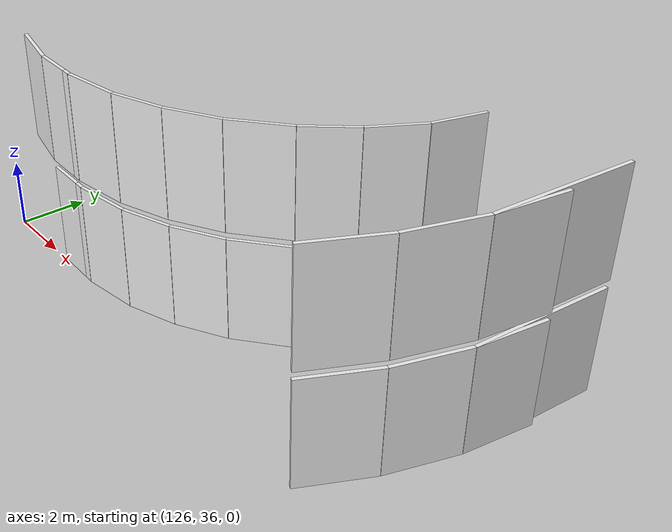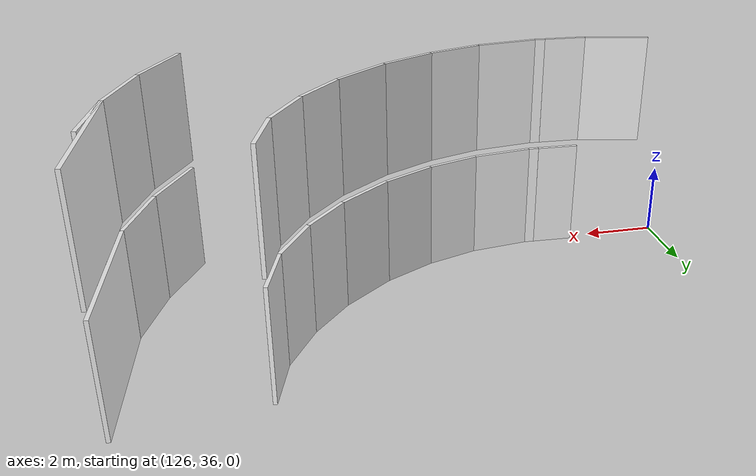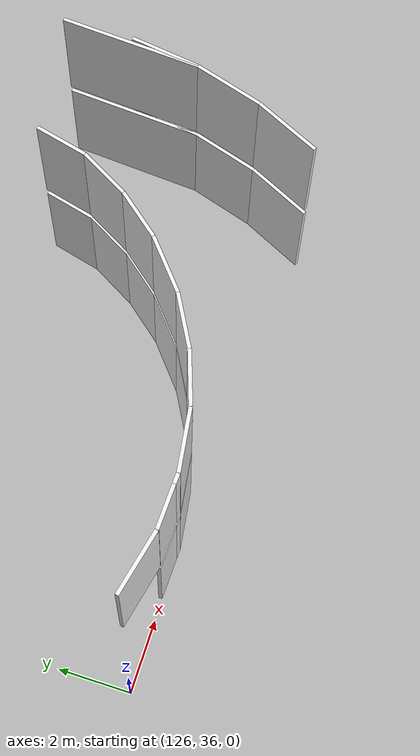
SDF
<sdf version="1.6">
 <world name="default">
  <model name="wall_129.2_36.1_0.0">
   <static>true</static>
   <pose>129.20000000001164 36.05499999993481 1.5 0 0 -0.025856305182021404</pose>
   <link name="link">
    <visual name="visual">
     <geometry><box><size>1.1603878662168654 0.1 3</size></box></geometry>
     <material>
      <script><uri>file://media/materials/scripts/gazebo.material</uri><name>Gazebo/White</name></script>
     </material>
    </visual>
   </link>
  </model>
  <model name="wall_129.9_36.0_0.0">
   <static>true</static>
   <pose>129.9200000000128 36.03499999991618 1.5 0 0 -0.035699113546877645</pose>
   <link name="link">
    <visual name="visual">
     <geometry><box><size>0.2801785145008318 0.1 3</size></box></geometry>
     <material>
      <script><uri>file://media/materials/scripts/gazebo.material</uri><name>Gazebo/White</name></script>
     </material>
    </visual>
   </link>
  </model>
  <model name="wall_130.9_36.1_0.0">
   <static>true</static>
   <pose>130.88999999998487 36.14999999990687 1.5 0 0 0.14358339378054572</pose>
   <link name="link">
    <visual name="visual">
     <geometry><box><size>1.6772596698252356 0.1 3</size></box></geometry>
     <material>
      <script><uri>file://media/materials/scripts/gazebo.material</uri><name>Gazebo/White</name></script>
     </material>
    </visual>
   </link>
  </model>
  <model name="wall_132.4_36.5_0.0">
   <static>true</static>
   <pose>132.42999999999302 36.514999999897555 1.5 0 0 0.33227648126688747</pose>
   <link name="link">
    <visual name="visual">
     <geometry><box><size>1.5021651040686979 0.1 3</size></box></geometry>
     <material>
      <script><uri>file://media/materials/scripts/gazebo.material</uri><name>Gazebo/White</name></script>
     </material>
    </visual>
   </link>
  </model>
  <model name="wall_133.8_37.1_0.0">
   <static>true</static>
   <pose>133.82000000000698 37.12999999988824 1.5 0 0 0.4983157943414261</pose>
   <link name="link">
    <visual name="visual">
     <geometry><box><size>1.5482893787315108 0.1 3</size></box></geometry>
     <material>
      <script><uri>file://media/materials/scripts/gazebo.material</uri><name>Gazebo/White</name></script>
     </material>
    </visual>
   </link>
  </model>
  <model name="wall_135.2_38.0_0.0">
   <static>true</static>
   <pose>135.15499999999884 38.03499999991618 1.5 0 0 0.6848975642669308</pose>
   <link name="link">
    <visual name="visual">
     <geometry><box><size>1.6914490827793647 0.1 3</size></box></geometry>
     <material>
      <script><uri>file://media/materials/scripts/gazebo.material</uri><name>Gazebo/White</name></script>
     </material>
    </visual>
   </link>
  </model>
  <model name="wall_136.3_39.1_0.0">
   <static>true</static>
   <pose>136.2950000000128 39.13500000000931 1.5 0 0 0.8614417228159299</pose>
   <link name="link">
    <visual name="visual">
     <geometry><box><size>1.4892279882068225 0.1 3</size></box></geometry>
     <material>
      <script><uri>file://media/materials/scripts/gazebo.material</uri><name>Gazebo/White</name></script>
     </material>
    </visual>
   </link>
  </model>
  <model name="wall_137.2_40.4_0.0">
   <static>true</static>
   <pose>137.1700000000128 40.360000000102445 1.5 0 0 1.0370881351170083</pose>
   <link name="link">
    <visual name="visual">
     <geometry><box><size>1.5332318805419543 0.1 3</size></box></geometry>
     <material>
      <script><uri>file://media/materials/scripts/gazebo.material</uri><name>Gazebo/White</name></script>
     </material>
    </visual>
   </link>
  </model>
  <model name="wall_137.8_41.7_0.0">
   <static>true</static>
   <pose>137.75500000000466 41.74500000011176 1.5 0 0 1.3080489362155228</pose>
   <link name="link">
    <visual name="visual">
     <geometry><box><size>1.501532550613227 0.1 3</size></box></geometry>
     <material>
      <script><uri>file://media/materials/scripts/gazebo.material</uri><name>Gazebo/White</name></script>
     </material>
    </visual>
   </link>
  </model>
  <model name="wall_140.0_36.3_0.0">
   <static>true</static>
   <pose>140.0 36.30499999993481 1.5 0 0 1.091454939073582</pose>
   <link name="link">
    <visual name="visual">
     <geometry><box><size>1.9948182874996538 0.1 3</size></box></geometry>
     <material>
      <script><uri>file://media/materials/scripts/gazebo.material</uri><name>Gazebo/White</name></script>
     </material>
    </visual>
   </link>
  </model>
  <model name="wall_140.8_38.1_0.0">
   <static>true</static>
   <pose>140.77999999999884 38.13500000000931 1.5 0 0 1.244291450100456</pose>
   <link name="link">
    <visual name="visual">
     <geometry><box><size>1.9954197554490212 0.1 3</size></box></geometry>
     <material>
      <script><uri>file://media/materials/scripts/gazebo.material</uri><name>Gazebo/White</name></script>
     </material>
    </visual>
   </link>
  </model>
  <model name="wall_141.3_40.1_0.0">
   <static>true</static>
   <pose>141.26499999998487 40.06000000005588 1.5 0 0 1.4039933911592954</pose>
   <link name="link">
    <visual name="visual">
     <geometry><box><size>1.9875864760721043 0.1 3</size></box></geometry>
     <material>
      <script><uri>file://media/materials/scripts/gazebo.material</uri><name>Gazebo/White</name></script>
     </material>
    </visual>
   </link>
  </model>
  <model name="wall_141.3_41.1_0.0">
   <static>true</static>
   <pose>141.27499999999418 41.05499999993481 1.5 0 0 -1.659173112954737</pose>
   <link name="link">
    <visual name="visual">
     <geometry><box><size>3.9654760115044465 0.1 3</size></box></geometry>
     <material>
      <script><uri>file://media/materials/scripts/gazebo.material</uri><name>Gazebo/White</name></script>
     </material>
    </visual>
   </link>
  </model>
  <model name="wall_127.8_36.3_3.2">
   <static>true</static>
   <pose>127.76999999998952 36.25499999988824 4.7 0 0 -0.21430488386451166</pose>
   <link name="link">
    <visual name="visual">
     <geometry><box><size>1.739798838981761 0.1 3</size></box></geometry>
     <material>
      <script><uri>file://media/materials/scripts/gazebo.material</uri><name>Gazebo/White</name></script>
     </material>
    </visual>
   </link>
  </model>
  <model name="wall_129.2_36.1_3.2">
   <static>true</static>
   <pose>129.20000000001164 36.05499999993481 4.7 0 0 -0.025856305182021404</pose>
   <link name="link">
    <visual name="visual">
     <geometry><box><size>1.1603878662168654 0.1 3</size></box></geometry>
     <material>
      <script><uri>file://media/materials/scripts/gazebo.material</uri><name>Gazebo/White</name></script>
     </material>
    </visual>
   </link>
  </model>
  <model name="wall_129.9_36.0_3.2">
   <static>true</static>
   <pose>129.9200000000128 36.03499999991618 4.7 0 0 -0.035699113546877645</pose>
   <link name="link">
    <visual name="visual">
     <geometry><box><size>0.2801785145008318 0.1 3</size></box></geometry>
     <material>
      <script><uri>file://media/materials/scripts/gazebo.material</uri><name>Gazebo/White</name></script>
     </material>
    </visual>
   </link>
  </model>
  <model name="wall_130.9_36.1_3.2">
   <static>true</static>
   <pose>130.88999999998487 36.14999999990687 4.7 0 0 0.14358339378054572</pose>
   <link name="link">
    <visual name="visual">
     <geometry><box><size>1.6772596698252356 0.1 3</size></box></geometry>
     <material>
      <script><uri>file://media/materials/scripts/gazebo.material</uri><name>Gazebo/White</name></script>
     </material>
    </visual>
   </link>
  </model>
  <model name="wall_132.4_36.5_3.2">
   <static>true</static>
   <pose>132.42999999999302 36.514999999897555 4.7 0 0 0.33227648126688747</pose>
   <link name="link">
    <visual name="visual">
     <geometry><box><size>1.5021651040686979 0.1 3</size></box></geometry>
     <material>
      <script><uri>file://media/materials/scripts/gazebo.material</uri><name>Gazebo/White</name></script>
     </material>
    </visual>
   </link>
  </model>
  <model name="wall_133.8_37.1_3.2">
   <static>true</static>
   <pose>133.82000000000698 37.12999999988824 4.7 0 0 0.4983157943414261</pose>
   <link name="link">
    <visual name="visual">
     <geometry><box><size>1.5482893787315108 0.1 3</size></box></geometry>
     <material>
      <script><uri>file://media/materials/scripts/gazebo.material</uri><name>Gazebo/White</name></script>
     </material>
    </visual>
   </link>
  </model>
  <model name="wall_135.2_38.0_3.2">
   <static>true</static>
   <pose>135.15499999999884 38.03499999991618 4.7 0 0 0.6848975642669308</pose>
   <link name="link">
    <visual name="visual">
     <geometry><box><size>1.6914490827793647 0.1 3</size></box></geometry>
     <material>
      <script><uri>file://media/materials/scripts/gazebo.material</uri><name>Gazebo/White</name></script>
     </material>
    </visual>
   </link>
  </model>
  <model name="wall_136.3_39.1_3.2">
   <static>true</static>
   <pose>136.2950000000128 39.13500000000931 4.7 0 0 0.8614417228159299</pose>
   <link name="link">
    <visual name="visual">
     <geometry><box><size>1.4892279882068225 0.1 3</size></box></geometry>
     <material>
      <script><uri>file://media/materials/scripts/gazebo.material</uri><name>Gazebo/White</name></script>
     </material>
    </visual>
   </link>
  </model>
  <model name="wall_137.2_40.4_3.2">
   <static>true</static>
   <pose>137.1700000000128 40.360000000102445 4.7 0 0 1.0370881351170083</pose>
   <link name="link">
    <visual name="visual">
     <geometry><box><size>1.5332318805419543 0.1 3</size></box></geometry>
     <material>
      <script><uri>file://media/materials/scripts/gazebo.material</uri><name>Gazebo/White</name></script>
     </material>
    </visual>
   </link>
  </model>
  <model name="wall_137.8_41.7_3.2">
   <static>true</static>
   <pose>137.75500000000466 41.74500000011176 4.7 0 0 1.3080489362155228</pose>
   <link name="link">
    <visual name="visual">
     <geometry><box><size>1.501532550613227 0.1 3</size></box></geometry>
     <material>
      <script><uri>file://media/materials/scripts/gazebo.material</uri><name>Gazebo/White</name></script>
     </material>
    </visual>
   </link>
  </model>
  <model name="wall_140.0_36.3_3.2">
   <static>true</static>
   <pose>140.0 36.30499999993481 4.7 0 0 1.091454939073582</pose>
   <link name="link">
    <visual name="visual">
     <geometry><box><size>1.9948182874996538 0.1 3</size></box></geometry>
     <material>
      <script><uri>file://media/materials/scripts/gazebo.material</uri><name>Gazebo/White</name></script>
     </material>
    </visual>
   </link>
  </model>
  <model name="wall_140.8_38.1_3.2">
   <static>true</static>
   <pose>140.77999999999884 38.13500000000931 4.7 0 0 1.244291450100456</pose>
   <link name="link">
    <visual name="visual">
     <geometry><box><size>1.9954197554490212 0.1 3</size></box></geometry>
     <material>
      <script><uri>file://media/materials/scripts/gazebo.material</uri><name>Gazebo/White</name></script>
     </material>
    </visual>
   </link>
  </model>
  <model name="wall_141.3_40.1_3.2">
   <static>true</static>
   <pose>141.26499999998487 40.06000000005588 4.7 0 0 1.4039933911592954</pose>
   <link name="link">
    <visual name="visual">
     <geometry><box><size>1.9875864760721043 0.1 3</size></box></geometry>
     <material>
      <script><uri>file://media/materials/scripts/gazebo.material</uri><name>Gazebo/White</name></script>
     </material>
    </visual>
   </link>
  </model>
  <model name="wall_141.3_41.1_3.2">
   <static>true</static>
   <pose>141.27499999999418 41.05499999993481 4.7 0 0 -1.659173112954737</pose>
   <link name="link">
    <visual name="visual">
     <geometry><box><size>3.9654760115044465 0.1 3</size></box></geometry>
     <material>
      <script><uri>file://media/materials/scripts/gazebo.material</uri><name>Gazebo/White</name></script>
     </material>
    </visual>
   </link>
  </model>
 </world>
</sdf>
